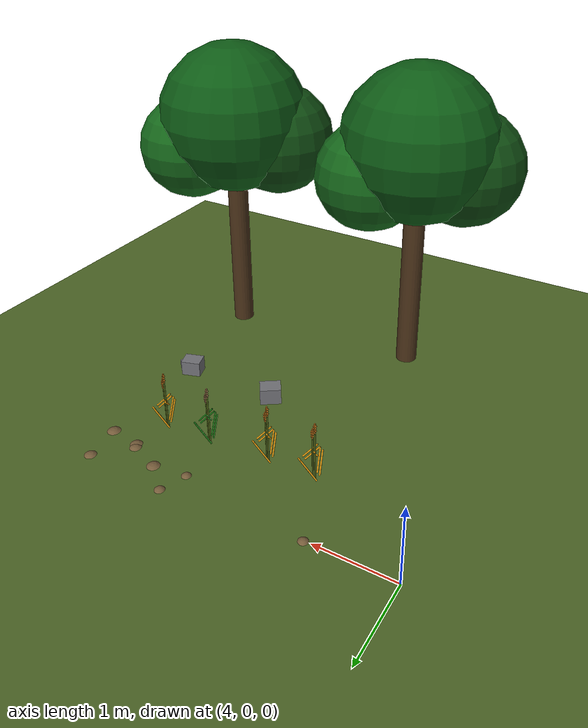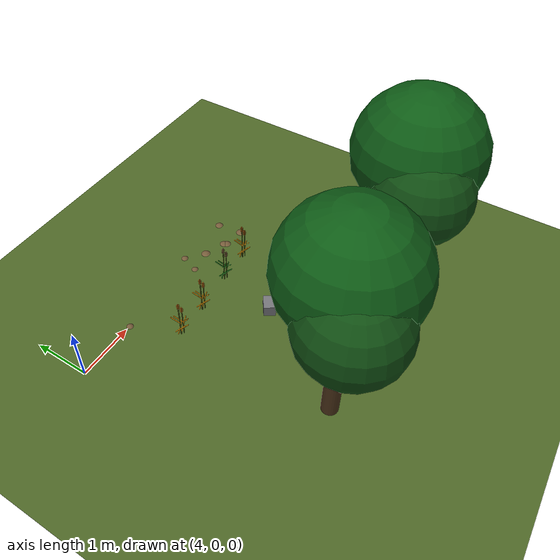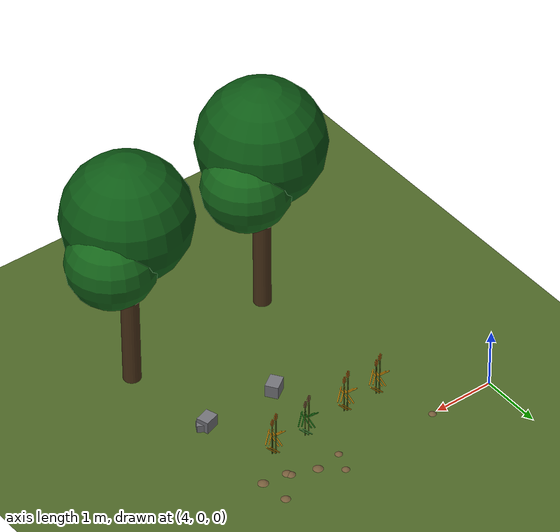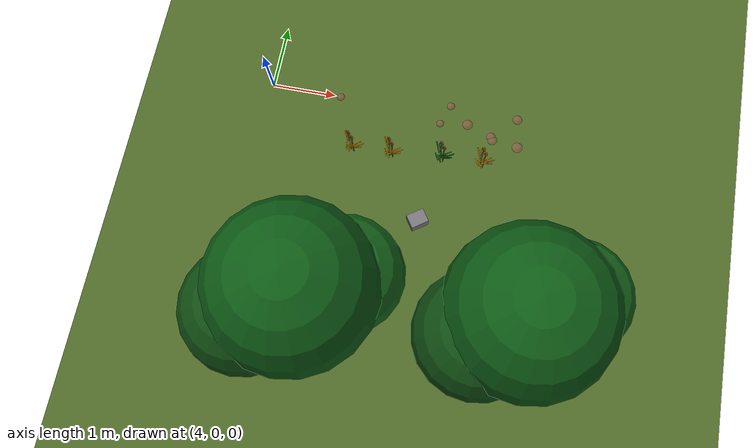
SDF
<sdf version="1.6">
 <world name="default">
  <model name="ground">
   <static>true</static>
   <link name="link">
    <collision name="col"><geometry><plane><normal>0 0 1</normal><size>40 40</size></plane></geometry></collision>
    <visual name="vis">
     <geometry><plane><normal>0 0 1</normal><size>40 40</size></plane></geometry>
     <material><ambient>0.30 0.40 0.15 1</ambient><diffuse>0.30 0.40 0.15 1</diffuse></material>
    </visual>
   </link>
  </model>
  <model name="plant_07">
   <static>true</static>
   <pose>5.43 -0.83 0 0 0 0</pose>
   <link name="link">
    <visual name="stem_0">
     <pose>0.000 0.000 0.320 0.000 0.000 0.000</pose>
     <geometry><cylinder><radius>0.01</radius><length>0.64</length></cylinder></geometry>
     <material><ambient>0.30 0.38 0.08 1</ambient><diffuse>0.30 0.38 0.08 1</diffuse></material>
    </visual>
    <visual name="leaf_0_0">
     <pose>0.055 0.045 0.130 0.000 0.700 0.150</pose>
     <geometry><cylinder><radius>0.009</radius><length>0.3</length></cylinder></geometry>
     <material><ambient>0.86 0.58 0.04 1</ambient><diffuse>0.86 0.58 0.04 1</diffuse></material>
    </visual>
    <visual name="leaf_0_1">
     <pose>-0.055 -0.045 0.230 0.000 -0.720 1.900</pose>
     <geometry><cylinder><radius>0.009</radius><length>0.28</length></cylinder></geometry>
     <material><ambient>0.86 0.58 0.04 1</ambient><diffuse>0.86 0.58 0.04 1</diffuse></material>
    </visual>
    <visual name="leaf_0_2">
     <pose>0.055 -0.045 0.320 0.000 0.780 3.700</pose>
     <geometry><cylinder><radius>0.009</radius><length>0.24</length></cylinder></geometry>
     <material><ambient>0.86 0.58 0.04 1</ambient><diffuse>0.86 0.58 0.04 1</diffuse></material>
    </visual>
    <visual name="leaf_0_3">
     <pose>-0.055 0.045 0.400 0.000 -0.800 5.200</pose>
     <geometry><cylinder><radius>0.009</radius><length>0.2</length></cylinder></geometry>
     <material><ambient>0.86 0.58 0.04 1</ambient><diffuse>0.86 0.58 0.04 1</diffuse></material>
    </visual>
    <visual name="stem_1">
     <pose>0.045 -0.025 0.265 0.000 0.000 0.000</pose>
     <geometry><cylinder><radius>0.008</radius><length>0.53</length></cylinder></geometry>
     <material><ambient>0.30 0.38 0.08 1</ambient><diffuse>0.30 0.38 0.08 1</diffuse></material>
    </visual>
    <visual name="leaf_1_0">
     <pose>0.100 0.020 0.130 0.000 0.700 0.150</pose>
     <geometry><cylinder><radius>0.009</radius><length>0.3</length></cylinder></geometry>
     <material><ambient>0.86 0.58 0.04 1</ambient><diffuse>0.86 0.58 0.04 1</diffuse></material>
    </visual>
    <visual name="leaf_1_1">
     <pose>-0.010 -0.070 0.230 0.000 -0.720 1.900</pose>
     <geometry><cylinder><radius>0.009</radius><length>0.28</length></cylinder></geometry>
     <material><ambient>0.86 0.58 0.04 1</ambient><diffuse>0.86 0.58 0.04 1</diffuse></material>
    </visual>
    <visual name="leaf_1_2">
     <pose>0.100 -0.070 0.320 0.000 0.780 3.700</pose>
     <geometry><cylinder><radius>0.009</radius><length>0.24</length></cylinder></geometry>
     <material><ambient>0.86 0.58 0.04 1</ambient><diffuse>0.86 0.58 0.04 1</diffuse></material>
    </visual>
    <visual name="leaf_1_3">
     <pose>-0.010 0.020 0.400 0.000 -0.800 5.200</pose>
     <geometry><cylinder><radius>0.009</radius><length>0.2</length></cylinder></geometry>
     <material><ambient>0.86 0.58 0.04 1</ambient><diffuse>0.86 0.58 0.04 1</diffuse></material>
    </visual>
    <visual name="ear_axis_0">
     <pose>0.000 0.000 0.715 0.000 0.000 0.000</pose>
     <geometry><cylinder><radius>0.010</radius><length>0.13</length></cylinder></geometry>
     <material><ambient>0.62 0.36 0.06 1</ambient><diffuse>0.62 0.36 0.06 1</diffuse></material>
    </visual>
    <visual name="grain_0_0">
     <pose>0.012 -0.006 0.675 0.000 0.000 0.000</pose>
     <geometry><sphere><radius>0.012</radius></sphere></geometry>
     <material><ambient>0.62 0.36 0.06 1</ambient><diffuse>0.62 0.36 0.06 1</diffuse></material>
    </visual>
    <visual name="grain_0_1">
     <pose>-0.014 0.006 0.691 0.000 0.000 0.000</pose>
     <geometry><sphere><radius>0.012</radius></sphere></geometry>
     <material><ambient>0.62 0.36 0.06 1</ambient><diffuse>0.62 0.36 0.06 1</diffuse></material>
    </visual>
    <visual name="grain_0_2">
     <pose>0.016 -0.006 0.707 0.000 0.000 0.000</pose>
     <geometry><sphere><radius>0.012</radius></sphere></geometry>
     <material><ambient>0.62 0.36 0.06 1</ambient><diffuse>0.62 0.36 0.06 1</diffuse></material>
    </visual>
    <visual name="grain_0_3">
     <pose>-0.012 0.006 0.723 0.000 0.000 0.000</pose>
     <geometry><sphere><radius>0.012</radius></sphere></geometry>
     <material><ambient>0.62 0.36 0.06 1</ambient><diffuse>0.62 0.36 0.06 1</diffuse></material>
    </visual>
    <visual name="grain_0_4">
     <pose>0.014 -0.006 0.739 0.000 0.000 0.000</pose>
     <geometry><sphere><radius>0.012</radius></sphere></geometry>
     <material><ambient>0.62 0.36 0.06 1</ambient><diffuse>0.62 0.36 0.06 1</diffuse></material>
    </visual>
    <visual name="grain_0_5">
     <pose>-0.016 0.006 0.755 0.000 0.000 0.000</pose>
     <geometry><sphere><radius>0.012</radius></sphere></geometry>
     <material><ambient>0.62 0.36 0.06 1</ambient><diffuse>0.62 0.36 0.06 1</diffuse></material>
    </visual>
    <visual name="ear_axis_1">
     <pose>0.045 -0.025 0.605 0.000 0.000 0.000</pose>
     <geometry><cylinder><radius>0.010</radius><length>0.13</length></cylinder></geometry>
     <material><ambient>0.62 0.36 0.06 1</ambient><diffuse>0.62 0.36 0.06 1</diffuse></material>
    </visual>
    <visual name="grain_1_0">
     <pose>0.057 -0.031 0.565 0.000 0.000 0.000</pose>
     <geometry><sphere><radius>0.012</radius></sphere></geometry>
     <material><ambient>0.62 0.36 0.06 1</ambient><diffuse>0.62 0.36 0.06 1</diffuse></material>
    </visual>
    <visual name="grain_1_1">
     <pose>0.031 -0.019 0.581 0.000 0.000 0.000</pose>
     <geometry><sphere><radius>0.012</radius></sphere></geometry>
     <material><ambient>0.62 0.36 0.06 1</ambient><diffuse>0.62 0.36 0.06 1</diffuse></material>
    </visual>
    <visual name="grain_1_2">
     <pose>0.061 -0.031 0.597 0.000 0.000 0.000</pose>
     <geometry><sphere><radius>0.012</radius></sphere></geometry>
     <material><ambient>0.62 0.36 0.06 1</ambient><diffuse>0.62 0.36 0.06 1</diffuse></material>
    </visual>
    <visual name="grain_1_3">
     <pose>0.033 -0.019 0.613 0.000 0.000 0.000</pose>
     <geometry><sphere><radius>0.012</radius></sphere></geometry>
     <material><ambient>0.62 0.36 0.06 1</ambient><diffuse>0.62 0.36 0.06 1</diffuse></material>
    </visual>
    <visual name="grain_1_4">
     <pose>0.059 -0.031 0.629 0.000 0.000 0.000</pose>
     <geometry><sphere><radius>0.012</radius></sphere></geometry>
     <material><ambient>0.62 0.36 0.06 1</ambient><diffuse>0.62 0.36 0.06 1</diffuse></material>
    </visual>
    <visual name="grain_1_5">
     <pose>0.029 -0.019 0.645 0.000 0.000 0.000</pose>
     <geometry><sphere><radius>0.012</radius></sphere></geometry>
     <material><ambient>0.62 0.36 0.06 1</ambient><diffuse>0.62 0.36 0.06 1</diffuse></material>
    </visual>
   </link>
  </model>
  <model name="plant_08">
   <static>true</static>
   <pose>6.04 -0.82 0 0 0 0</pose>
   <link name="link">
    <visual name="stem_0">
     <pose>0.000 0.000 0.320 0.000 0.000 0.000</pose>
     <geometry><cylinder><radius>0.01</radius><length>0.64</length></cylinder></geometry>
     <material><ambient>0.30 0.38 0.08 1</ambient><diffuse>0.30 0.38 0.08 1</diffuse></material>
    </visual>
    <visual name="leaf_0_0">
     <pose>0.055 0.045 0.130 0.000 0.700 0.150</pose>
     <geometry><cylinder><radius>0.009</radius><length>0.3</length></cylinder></geometry>
     <material><ambient>0.86 0.58 0.04 1</ambient><diffuse>0.86 0.58 0.04 1</diffuse></material>
    </visual>
    <visual name="leaf_0_1">
     <pose>-0.055 -0.045 0.230 0.000 -0.720 1.900</pose>
     <geometry><cylinder><radius>0.009</radius><length>0.28</length></cylinder></geometry>
     <material><ambient>0.86 0.58 0.04 1</ambient><diffuse>0.86 0.58 0.04 1</diffuse></material>
    </visual>
    <visual name="leaf_0_2">
     <pose>0.055 -0.045 0.320 0.000 0.780 3.700</pose>
     <geometry><cylinder><radius>0.009</radius><length>0.24</length></cylinder></geometry>
     <material><ambient>0.86 0.58 0.04 1</ambient><diffuse>0.86 0.58 0.04 1</diffuse></material>
    </visual>
    <visual name="leaf_0_3">
     <pose>-0.055 0.045 0.400 0.000 -0.800 5.200</pose>
     <geometry><cylinder><radius>0.009</radius><length>0.2</length></cylinder></geometry>
     <material><ambient>0.86 0.58 0.04 1</ambient><diffuse>0.86 0.58 0.04 1</diffuse></material>
    </visual>
    <visual name="stem_1">
     <pose>0.045 -0.025 0.265 0.000 0.000 0.000</pose>
     <geometry><cylinder><radius>0.008</radius><length>0.53</length></cylinder></geometry>
     <material><ambient>0.30 0.38 0.08 1</ambient><diffuse>0.30 0.38 0.08 1</diffuse></material>
    </visual>
    <visual name="leaf_1_0">
     <pose>0.100 0.020 0.130 0.000 0.700 0.150</pose>
     <geometry><cylinder><radius>0.009</radius><length>0.3</length></cylinder></geometry>
     <material><ambient>0.86 0.58 0.04 1</ambient><diffuse>0.86 0.58 0.04 1</diffuse></material>
    </visual>
    <visual name="leaf_1_1">
     <pose>-0.010 -0.070 0.230 0.000 -0.720 1.900</pose>
     <geometry><cylinder><radius>0.009</radius><length>0.28</length></cylinder></geometry>
     <material><ambient>0.86 0.58 0.04 1</ambient><diffuse>0.86 0.58 0.04 1</diffuse></material>
    </visual>
    <visual name="leaf_1_2">
     <pose>0.100 -0.070 0.320 0.000 0.780 3.700</pose>
     <geometry><cylinder><radius>0.009</radius><length>0.24</length></cylinder></geometry>
     <material><ambient>0.86 0.58 0.04 1</ambient><diffuse>0.86 0.58 0.04 1</diffuse></material>
    </visual>
    <visual name="leaf_1_3">
     <pose>-0.010 0.020 0.400 0.000 -0.800 5.200</pose>
     <geometry><cylinder><radius>0.009</radius><length>0.2</length></cylinder></geometry>
     <material><ambient>0.86 0.58 0.04 1</ambient><diffuse>0.86 0.58 0.04 1</diffuse></material>
    </visual>
    <visual name="ear_axis_0">
     <pose>0.000 0.000 0.715 0.000 0.000 0.000</pose>
     <geometry><cylinder><radius>0.010</radius><length>0.13</length></cylinder></geometry>
     <material><ambient>0.62 0.36 0.06 1</ambient><diffuse>0.62 0.36 0.06 1</diffuse></material>
    </visual>
    <visual name="grain_0_0">
     <pose>0.012 -0.006 0.675 0.000 0.000 0.000</pose>
     <geometry><sphere><radius>0.012</radius></sphere></geometry>
     <material><ambient>0.62 0.36 0.06 1</ambient><diffuse>0.62 0.36 0.06 1</diffuse></material>
    </visual>
    <visual name="grain_0_1">
     <pose>-0.014 0.006 0.691 0.000 0.000 0.000</pose>
     <geometry><sphere><radius>0.012</radius></sphere></geometry>
     <material><ambient>0.62 0.36 0.06 1</ambient><diffuse>0.62 0.36 0.06 1</diffuse></material>
    </visual>
    <visual name="grain_0_2">
     <pose>0.016 -0.006 0.707 0.000 0.000 0.000</pose>
     <geometry><sphere><radius>0.012</radius></sphere></geometry>
     <material><ambient>0.62 0.36 0.06 1</ambient><diffuse>0.62 0.36 0.06 1</diffuse></material>
    </visual>
    <visual name="grain_0_3">
     <pose>-0.012 0.006 0.723 0.000 0.000 0.000</pose>
     <geometry><sphere><radius>0.012</radius></sphere></geometry>
     <material><ambient>0.62 0.36 0.06 1</ambient><diffuse>0.62 0.36 0.06 1</diffuse></material>
    </visual>
    <visual name="grain_0_4">
     <pose>0.014 -0.006 0.739 0.000 0.000 0.000</pose>
     <geometry><sphere><radius>0.012</radius></sphere></geometry>
     <material><ambient>0.62 0.36 0.06 1</ambient><diffuse>0.62 0.36 0.06 1</diffuse></material>
    </visual>
    <visual name="grain_0_5">
     <pose>-0.016 0.006 0.755 0.000 0.000 0.000</pose>
     <geometry><sphere><radius>0.012</radius></sphere></geometry>
     <material><ambient>0.62 0.36 0.06 1</ambient><diffuse>0.62 0.36 0.06 1</diffuse></material>
    </visual>
    <visual name="ear_axis_1">
     <pose>0.045 -0.025 0.605 0.000 0.000 0.000</pose>
     <geometry><cylinder><radius>0.010</radius><length>0.13</length></cylinder></geometry>
     <material><ambient>0.62 0.36 0.06 1</ambient><diffuse>0.62 0.36 0.06 1</diffuse></material>
    </visual>
    <visual name="grain_1_0">
     <pose>0.057 -0.031 0.565 0.000 0.000 0.000</pose>
     <geometry><sphere><radius>0.012</radius></sphere></geometry>
     <material><ambient>0.62 0.36 0.06 1</ambient><diffuse>0.62 0.36 0.06 1</diffuse></material>
    </visual>
    <visual name="grain_1_1">
     <pose>0.031 -0.019 0.581 0.000 0.000 0.000</pose>
     <geometry><sphere><radius>0.012</radius></sphere></geometry>
     <material><ambient>0.62 0.36 0.06 1</ambient><diffuse>0.62 0.36 0.06 1</diffuse></material>
    </visual>
    <visual name="grain_1_2">
     <pose>0.061 -0.031 0.597 0.000 0.000 0.000</pose>
     <geometry><sphere><radius>0.012</radius></sphere></geometry>
     <material><ambient>0.62 0.36 0.06 1</ambient><diffuse>0.62 0.36 0.06 1</diffuse></material>
    </visual>
    <visual name="grain_1_3">
     <pose>0.033 -0.019 0.613 0.000 0.000 0.000</pose>
     <geometry><sphere><radius>0.012</radius></sphere></geometry>
     <material><ambient>0.62 0.36 0.06 1</ambient><diffuse>0.62 0.36 0.06 1</diffuse></material>
    </visual>
    <visual name="grain_1_4">
     <pose>0.059 -0.031 0.629 0.000 0.000 0.000</pose>
     <geometry><sphere><radius>0.012</radius></sphere></geometry>
     <material><ambient>0.62 0.36 0.06 1</ambient><diffuse>0.62 0.36 0.06 1</diffuse></material>
    </visual>
    <visual name="grain_1_5">
     <pose>0.029 -0.019 0.645 0.000 0.000 0.000</pose>
     <geometry><sphere><radius>0.012</radius></sphere></geometry>
     <material><ambient>0.62 0.36 0.06 1</ambient><diffuse>0.62 0.36 0.06 1</diffuse></material>
    </visual>
   </link>
  </model>
  <model name="plant_09">
   <static>true</static>
   <pose>6.82 -0.75 0 0 0 0</pose>
   <link name="link">
    <visual name="stem_0">
     <pose>0.000 0.000 0.320 0.000 0.000 0.000</pose>
     <geometry><cylinder><radius>0.01</radius><length>0.64</length></cylinder></geometry>
     <material><ambient>0.30 0.38 0.08 1</ambient><diffuse>0.30 0.38 0.08 1</diffuse></material>
    </visual>
    <visual name="leaf_0_0">
     <pose>0.055 0.045 0.130 0.000 0.700 0.150</pose>
     <geometry><cylinder><radius>0.009</radius><length>0.3</length></cylinder></geometry>
     <material><ambient>0.08 0.42 0.05 1</ambient><diffuse>0.08 0.42 0.05 1</diffuse></material>
    </visual>
    <visual name="leaf_0_1">
     <pose>-0.055 -0.045 0.230 0.000 -0.720 1.900</pose>
     <geometry><cylinder><radius>0.009</radius><length>0.28</length></cylinder></geometry>
     <material><ambient>0.08 0.42 0.05 1</ambient><diffuse>0.08 0.42 0.05 1</diffuse></material>
    </visual>
    <visual name="leaf_0_2">
     <pose>0.055 -0.045 0.320 0.000 0.780 3.700</pose>
     <geometry><cylinder><radius>0.009</radius><length>0.24</length></cylinder></geometry>
     <material><ambient>0.08 0.42 0.05 1</ambient><diffuse>0.08 0.42 0.05 1</diffuse></material>
    </visual>
    <visual name="leaf_0_3">
     <pose>-0.055 0.045 0.400 0.000 -0.800 5.200</pose>
     <geometry><cylinder><radius>0.009</radius><length>0.2</length></cylinder></geometry>
     <material><ambient>0.08 0.42 0.05 1</ambient><diffuse>0.08 0.42 0.05 1</diffuse></material>
    </visual>
    <visual name="stem_1">
     <pose>0.045 -0.025 0.265 0.000 0.000 0.000</pose>
     <geometry><cylinder><radius>0.008</radius><length>0.53</length></cylinder></geometry>
     <material><ambient>0.30 0.38 0.08 1</ambient><diffuse>0.30 0.38 0.08 1</diffuse></material>
    </visual>
    <visual name="leaf_1_0">
     <pose>0.100 0.020 0.130 0.000 0.700 0.150</pose>
     <geometry><cylinder><radius>0.009</radius><length>0.3</length></cylinder></geometry>
     <material><ambient>0.08 0.42 0.05 1</ambient><diffuse>0.08 0.42 0.05 1</diffuse></material>
    </visual>
    <visual name="leaf_1_1">
     <pose>-0.010 -0.070 0.230 0.000 -0.720 1.900</pose>
     <geometry><cylinder><radius>0.009</radius><length>0.28</length></cylinder></geometry>
     <material><ambient>0.08 0.42 0.05 1</ambient><diffuse>0.08 0.42 0.05 1</diffuse></material>
    </visual>
    <visual name="leaf_1_2">
     <pose>0.100 -0.070 0.320 0.000 0.780 3.700</pose>
     <geometry><cylinder><radius>0.009</radius><length>0.24</length></cylinder></geometry>
     <material><ambient>0.08 0.42 0.05 1</ambient><diffuse>0.08 0.42 0.05 1</diffuse></material>
    </visual>
    <visual name="leaf_1_3">
     <pose>-0.010 0.020 0.400 0.000 -0.800 5.200</pose>
     <geometry><cylinder><radius>0.009</radius><length>0.2</length></cylinder></geometry>
     <material><ambient>0.08 0.42 0.05 1</ambient><diffuse>0.08 0.42 0.05 1</diffuse></material>
    </visual>
    <visual name="ear_axis_0">
     <pose>0.000 0.000 0.715 0.000 0.000 0.000</pose>
     <geometry><cylinder><radius>0.010</radius><length>0.13</length></cylinder></geometry>
     <material><ambient>0.48 0.36 0.22 1</ambient><diffuse>0.48 0.36 0.22 1</diffuse></material>
    </visual>
    <visual name="grain_0_0">
     <pose>0.012 -0.006 0.675 0.000 0.000 0.000</pose>
     <geometry><sphere><radius>0.012</radius></sphere></geometry>
     <material><ambient>0.48 0.36 0.22 1</ambient><diffuse>0.48 0.36 0.22 1</diffuse></material>
    </visual>
    <visual name="grain_0_1">
     <pose>-0.014 0.006 0.691 0.000 0.000 0.000</pose>
     <geometry><sphere><radius>0.012</radius></sphere></geometry>
     <material><ambient>0.48 0.36 0.22 1</ambient><diffuse>0.48 0.36 0.22 1</diffuse></material>
    </visual>
    <visual name="grain_0_2">
     <pose>0.016 -0.006 0.707 0.000 0.000 0.000</pose>
     <geometry><sphere><radius>0.012</radius></sphere></geometry>
     <material><ambient>0.48 0.36 0.22 1</ambient><diffuse>0.48 0.36 0.22 1</diffuse></material>
    </visual>
    <visual name="grain_0_3">
     <pose>-0.012 0.006 0.723 0.000 0.000 0.000</pose>
     <geometry><sphere><radius>0.012</radius></sphere></geometry>
     <material><ambient>0.48 0.36 0.22 1</ambient><diffuse>0.48 0.36 0.22 1</diffuse></material>
    </visual>
    <visual name="grain_0_4">
     <pose>0.014 -0.006 0.739 0.000 0.000 0.000</pose>
     <geometry><sphere><radius>0.012</radius></sphere></geometry>
     <material><ambient>0.48 0.36 0.22 1</ambient><diffuse>0.48 0.36 0.22 1</diffuse></material>
    </visual>
    <visual name="grain_0_5">
     <pose>-0.016 0.006 0.755 0.000 0.000 0.000</pose>
     <geometry><sphere><radius>0.012</radius></sphere></geometry>
     <material><ambient>0.48 0.36 0.22 1</ambient><diffuse>0.48 0.36 0.22 1</diffuse></material>
    </visual>
    <visual name="ear_axis_1">
     <pose>0.045 -0.025 0.605 0.000 0.000 0.000</pose>
     <geometry><cylinder><radius>0.010</radius><length>0.13</length></cylinder></geometry>
     <material><ambient>0.48 0.36 0.22 1</ambient><diffuse>0.48 0.36 0.22 1</diffuse></material>
    </visual>
    <visual name="grain_1_0">
     <pose>0.057 -0.031 0.565 0.000 0.000 0.000</pose>
     <geometry><sphere><radius>0.012</radius></sphere></geometry>
     <material><ambient>0.48 0.36 0.22 1</ambient><diffuse>0.48 0.36 0.22 1</diffuse></material>
    </visual>
    <visual name="grain_1_1">
     <pose>0.031 -0.019 0.581 0.000 0.000 0.000</pose>
     <geometry><sphere><radius>0.012</radius></sphere></geometry>
     <material><ambient>0.48 0.36 0.22 1</ambient><diffuse>0.48 0.36 0.22 1</diffuse></material>
    </visual>
    <visual name="grain_1_2">
     <pose>0.061 -0.031 0.597 0.000 0.000 0.000</pose>
     <geometry><sphere><radius>0.012</radius></sphere></geometry>
     <material><ambient>0.48 0.36 0.22 1</ambient><diffuse>0.48 0.36 0.22 1</diffuse></material>
    </visual>
    <visual name="grain_1_3">
     <pose>0.033 -0.019 0.613 0.000 0.000 0.000</pose>
     <geometry><sphere><radius>0.012</radius></sphere></geometry>
     <material><ambient>0.48 0.36 0.22 1</ambient><diffuse>0.48 0.36 0.22 1</diffuse></material>
    </visual>
    <visual name="grain_1_4">
     <pose>0.059 -0.031 0.629 0.000 0.000 0.000</pose>
     <geometry><sphere><radius>0.012</radius></sphere></geometry>
     <material><ambient>0.48 0.36 0.22 1</ambient><diffuse>0.48 0.36 0.22 1</diffuse></material>
    </visual>
    <visual name="grain_1_5">
     <pose>0.029 -0.019 0.645 0.000 0.000 0.000</pose>
     <geometry><sphere><radius>0.012</radius></sphere></geometry>
     <material><ambient>0.48 0.36 0.22 1</ambient><diffuse>0.48 0.36 0.22 1</diffuse></material>
    </visual>
   </link>
  </model>
  <model name="plant_10">
   <static>true</static>
   <pose>7.44 -0.73 0 0 0 0</pose>
   <link name="link">
    <visual name="stem_0">
     <pose>0.000 0.000 0.320 0.000 0.000 0.000</pose>
     <geometry><cylinder><radius>0.01</radius><length>0.64</length></cylinder></geometry>
     <material><ambient>0.30 0.38 0.08 1</ambient><diffuse>0.30 0.38 0.08 1</diffuse></material>
    </visual>
    <visual name="leaf_0_0">
     <pose>0.055 0.045 0.130 0.000 0.700 0.150</pose>
     <geometry><cylinder><radius>0.009</radius><length>0.3</length></cylinder></geometry>
     <material><ambient>0.86 0.58 0.04 1</ambient><diffuse>0.86 0.58 0.04 1</diffuse></material>
    </visual>
    <visual name="leaf_0_1">
     <pose>-0.055 -0.045 0.230 0.000 -0.720 1.900</pose>
     <geometry><cylinder><radius>0.009</radius><length>0.28</length></cylinder></geometry>
     <material><ambient>0.86 0.58 0.04 1</ambient><diffuse>0.86 0.58 0.04 1</diffuse></material>
    </visual>
    <visual name="leaf_0_2">
     <pose>0.055 -0.045 0.320 0.000 0.780 3.700</pose>
     <geometry><cylinder><radius>0.009</radius><length>0.24</length></cylinder></geometry>
     <material><ambient>0.86 0.58 0.04 1</ambient><diffuse>0.86 0.58 0.04 1</diffuse></material>
    </visual>
    <visual name="leaf_0_3">
     <pose>-0.055 0.045 0.400 0.000 -0.800 5.200</pose>
     <geometry><cylinder><radius>0.009</radius><length>0.2</length></cylinder></geometry>
     <material><ambient>0.86 0.58 0.04 1</ambient><diffuse>0.86 0.58 0.04 1</diffuse></material>
    </visual>
    <visual name="stem_1">
     <pose>0.045 -0.025 0.265 0.000 0.000 0.000</pose>
     <geometry><cylinder><radius>0.008</radius><length>0.53</length></cylinder></geometry>
     <material><ambient>0.30 0.38 0.08 1</ambient><diffuse>0.30 0.38 0.08 1</diffuse></material>
    </visual>
    <visual name="leaf_1_0">
     <pose>0.100 0.020 0.130 0.000 0.700 0.150</pose>
     <geometry><cylinder><radius>0.009</radius><length>0.3</length></cylinder></geometry>
     <material><ambient>0.86 0.58 0.04 1</ambient><diffuse>0.86 0.58 0.04 1</diffuse></material>
    </visual>
    <visual name="leaf_1_1">
     <pose>-0.010 -0.070 0.230 0.000 -0.720 1.900</pose>
     <geometry><cylinder><radius>0.009</radius><length>0.28</length></cylinder></geometry>
     <material><ambient>0.86 0.58 0.04 1</ambient><diffuse>0.86 0.58 0.04 1</diffuse></material>
    </visual>
    <visual name="leaf_1_2">
     <pose>0.100 -0.070 0.320 0.000 0.780 3.700</pose>
     <geometry><cylinder><radius>0.009</radius><length>0.24</length></cylinder></geometry>
     <material><ambient>0.86 0.58 0.04 1</ambient><diffuse>0.86 0.58 0.04 1</diffuse></material>
    </visual>
    <visual name="leaf_1_3">
     <pose>-0.010 0.020 0.400 0.000 -0.800 5.200</pose>
     <geometry><cylinder><radius>0.009</radius><length>0.2</length></cylinder></geometry>
     <material><ambient>0.86 0.58 0.04 1</ambient><diffuse>0.86 0.58 0.04 1</diffuse></material>
    </visual>
    <visual name="ear_axis_0">
     <pose>0.000 0.000 0.715 0.000 0.000 0.000</pose>
     <geometry><cylinder><radius>0.010</radius><length>0.13</length></cylinder></geometry>
     <material><ambient>0.62 0.36 0.06 1</ambient><diffuse>0.62 0.36 0.06 1</diffuse></material>
    </visual>
    <visual name="grain_0_0">
     <pose>0.012 -0.006 0.675 0.000 0.000 0.000</pose>
     <geometry><sphere><radius>0.012</radius></sphere></geometry>
     <material><ambient>0.62 0.36 0.06 1</ambient><diffuse>0.62 0.36 0.06 1</diffuse></material>
    </visual>
    <visual name="grain_0_1">
     <pose>-0.014 0.006 0.691 0.000 0.000 0.000</pose>
     <geometry><sphere><radius>0.012</radius></sphere></geometry>
     <material><ambient>0.62 0.36 0.06 1</ambient><diffuse>0.62 0.36 0.06 1</diffuse></material>
    </visual>
    <visual name="grain_0_2">
     <pose>0.016 -0.006 0.707 0.000 0.000 0.000</pose>
     <geometry><sphere><radius>0.012</radius></sphere></geometry>
     <material><ambient>0.62 0.36 0.06 1</ambient><diffuse>0.62 0.36 0.06 1</diffuse></material>
    </visual>
    <visual name="grain_0_3">
     <pose>-0.012 0.006 0.723 0.000 0.000 0.000</pose>
     <geometry><sphere><radius>0.012</radius></sphere></geometry>
     <material><ambient>0.62 0.36 0.06 1</ambient><diffuse>0.62 0.36 0.06 1</diffuse></material>
    </visual>
    <visual name="grain_0_4">
     <pose>0.014 -0.006 0.739 0.000 0.000 0.000</pose>
     <geometry><sphere><radius>0.012</radius></sphere></geometry>
     <material><ambient>0.62 0.36 0.06 1</ambient><diffuse>0.62 0.36 0.06 1</diffuse></material>
    </visual>
    <visual name="grain_0_5">
     <pose>-0.016 0.006 0.755 0.000 0.000 0.000</pose>
     <geometry><sphere><radius>0.012</radius></sphere></geometry>
     <material><ambient>0.62 0.36 0.06 1</ambient><diffuse>0.62 0.36 0.06 1</diffuse></material>
    </visual>
    <visual name="ear_axis_1">
     <pose>0.045 -0.025 0.605 0.000 0.000 0.000</pose>
     <geometry><cylinder><radius>0.010</radius><length>0.13</length></cylinder></geometry>
     <material><ambient>0.62 0.36 0.06 1</ambient><diffuse>0.62 0.36 0.06 1</diffuse></material>
    </visual>
    <visual name="grain_1_0">
     <pose>0.057 -0.031 0.565 0.000 0.000 0.000</pose>
     <geometry><sphere><radius>0.012</radius></sphere></geometry>
     <material><ambient>0.62 0.36 0.06 1</ambient><diffuse>0.62 0.36 0.06 1</diffuse></material>
    </visual>
    <visual name="grain_1_1">
     <pose>0.031 -0.019 0.581 0.000 0.000 0.000</pose>
     <geometry><sphere><radius>0.012</radius></sphere></geometry>
     <material><ambient>0.62 0.36 0.06 1</ambient><diffuse>0.62 0.36 0.06 1</diffuse></material>
    </visual>
    <visual name="grain_1_2">
     <pose>0.061 -0.031 0.597 0.000 0.000 0.000</pose>
     <geometry><sphere><radius>0.012</radius></sphere></geometry>
     <material><ambient>0.62 0.36 0.06 1</ambient><diffuse>0.62 0.36 0.06 1</diffuse></material>
    </visual>
    <visual name="grain_1_3">
     <pose>0.033 -0.019 0.613 0.000 0.000 0.000</pose>
     <geometry><sphere><radius>0.012</radius></sphere></geometry>
     <material><ambient>0.62 0.36 0.06 1</ambient><diffuse>0.62 0.36 0.06 1</diffuse></material>
    </visual>
    <visual name="grain_1_4">
     <pose>0.059 -0.031 0.629 0.000 0.000 0.000</pose>
     <geometry><sphere><radius>0.012</radius></sphere></geometry>
     <material><ambient>0.62 0.36 0.06 1</ambient><diffuse>0.62 0.36 0.06 1</diffuse></material>
    </visual>
    <visual name="grain_1_5">
     <pose>0.029 -0.019 0.645 0.000 0.000 0.000</pose>
     <geometry><sphere><radius>0.012</radius></sphere></geometry>
     <material><ambient>0.62 0.36 0.06 1</ambient><diffuse>0.62 0.36 0.06 1</diffuse></material>
    </visual>
   </link>
  </model>
  <model name="tree_s3">
   <static>true</static>
   <pose>5.54 -3.55 0 0 0 0</pose>
   <link name="link">
    <collision name="trunk_col">
     <pose>0 0 1.1 0 0 0</pose>
     <geometry><cylinder><radius>0.16</radius><length>2.2</length></cylinder></geometry>
    </collision>
    <visual name="trunk">
     <pose>0 0 1.1 0 0 0</pose>
     <geometry><cylinder><radius>0.14</radius><length>2.2</length></cylinder></geometry>
     <material><ambient>0.30 0.20 0.10 1</ambient><diffuse>0.30 0.20 0.10 1</diffuse></material>
    </visual>
    <visual name="crown1">
     <pose>0 0 3.1 0 0 0</pose>
     <geometry><sphere><radius>1.0</radius></sphere></geometry>
     <material><ambient>0.05 0.35 0.08 1</ambient><diffuse>0.05 0.35 0.08 1</diffuse></material>
    </visual>
    <visual name="crown2">
     <pose>0.5 0.3 2.7 0 0 0</pose>
     <geometry><sphere><radius>0.7</radius></sphere></geometry>
     <material><ambient>0.08 0.40 0.10 1</ambient><diffuse>0.08 0.40 0.10 1</diffuse></material>
    </visual>
    <visual name="crown3">
     <pose>-0.5 -0.3 2.8 0 0 0</pose>
     <geometry><sphere><radius>0.75</radius></sphere></geometry>
     <material><ambient>0.06 0.30 0.07 1</ambient><diffuse>0.06 0.30 0.07 1</diffuse></material>
    </visual>
   </link>
  </model>
  <model name="tree_s4">
   <static>true</static>
   <pose>8.13 -3.35 0 0 0 0</pose>
   <link name="link">
    <collision name="trunk_col">
     <pose>0 0 1.1 0 0 0</pose>
     <geometry><cylinder><radius>0.16</radius><length>2.2</length></cylinder></geometry>
    </collision>
    <visual name="trunk">
     <pose>0 0 1.1 0 0 0</pose>
     <geometry><cylinder><radius>0.14</radius><length>2.2</length></cylinder></geometry>
     <material><ambient>0.30 0.20 0.10 1</ambient><diffuse>0.30 0.20 0.10 1</diffuse></material>
    </visual>
    <visual name="crown1">
     <pose>0 0 3.1 0 0 0</pose>
     <geometry><sphere><radius>1.0</radius></sphere></geometry>
     <material><ambient>0.05 0.35 0.08 1</ambient><diffuse>0.05 0.35 0.08 1</diffuse></material>
    </visual>
    <visual name="crown2">
     <pose>0.5 0.3 2.7 0 0 0</pose>
     <geometry><sphere><radius>0.7</radius></sphere></geometry>
     <material><ambient>0.08 0.40 0.10 1</ambient><diffuse>0.08 0.40 0.10 1</diffuse></material>
    </visual>
    <visual name="crown3">
     <pose>-0.5 -0.3 2.8 0 0 0</pose>
     <geometry><sphere><radius>0.75</radius></sphere></geometry>
     <material><ambient>0.06 0.30 0.07 1</ambient><diffuse>0.06 0.30 0.07 1</diffuse></material>
    </visual>
   </link>
  </model>
  <model name="rock_04">
   <static>true</static>
   <pose>6.65 -1.80 0.107 0 0 0.60</pose>
   <link name="link">
    <collision name="c"><geometry><box><size>0.27 0.21 0.214</size></box></geometry></collision>
    <visual name="v">
     <geometry><box><size>0.27 0.21 0.214</size></box></geometry>
     <material><ambient>0.45 0.45 0.47 1</ambient><diffuse>0.45 0.45 0.47 1</diffuse></material>
    </visual>
   </link>
  </model>
  <model name="rock_06">
   <static>true</static>
   <pose>7.89 -1.80 0.100 0 0 0.31</pose>
   <link name="link">
    <collision name="c"><geometry><box><size>0.25 0.20 0.201</size></box></geometry></collision>
    <visual name="v">
     <geometry><box><size>0.25 0.20 0.201</size></box></geometry>
     <material><ambient>0.45 0.45 0.47 1</ambient><diffuse>0.45 0.45 0.47 1</diffuse></material>
    </visual>
   </link>
  </model>
  <model name="rock_10">
   <static>true</static>
   <pose>7.99 -1.80 0.063 0 0 2.63</pose>
   <link name="link">
    <collision name="c"><geometry><box><size>0.16 0.13 0.126</size></box></geometry></collision>
    <visual name="v">
     <geometry><box><size>0.16 0.13 0.126</size></box></geometry>
     <material><ambient>0.45 0.45 0.47 1</ambient><diffuse>0.45 0.45 0.47 1</diffuse></material>
    </visual>
   </link>
  </model>
  <model name="bump_1_09">
   <static>true</static>
   <pose>5.09 0.00 -0.063 0 0 0</pose>
   <link name="link">
    <collision name="c"><geometry><sphere><radius>0.083</radius></sphere></geometry></collision>
    <visual name="v">
     <geometry><sphere><radius>0.083</radius></sphere></geometry>
     <material><ambient>0.45 0.35 0.22 1</ambient><diffuse>0.45 0.35 0.22 1</diffuse></material>
    </visual>
   </link>
  </model>
  <model name="bump_1_15">
   <static>true</static>
   <pose>7.54 -0.24 -0.091 0 0 0</pose>
   <link name="link">
    <collision name="c"><geometry><sphere><radius>0.111</radius></sphere></geometry></collision>
    <visual name="v">
     <geometry><sphere><radius>0.111</radius></sphere></geometry>
     <material><ambient>0.45 0.35 0.22 1</ambient><diffuse>0.45 0.35 0.22 1</diffuse></material>
    </visual>
   </link>
  </model>
  <model name="bump_1_19">
   <static>true</static>
   <pose>7.97 -0.34 -0.120 0 0 0</pose>
   <link name="link">
    <collision name="c"><geometry><sphere><radius>0.140</radius></sphere></geometry></collision>
    <visual name="v">
     <geometry><sphere><radius>0.140</radius></sphere></geometry>
     <material><ambient>0.45 0.35 0.22 1</ambient><diffuse>0.45 0.35 0.22 1</diffuse></material>
    </visual>
   </link>
  </model>
  <model name="bump_1_21">
   <static>true</static>
   <pose>7.15 -0.10 -0.113 0 0 0</pose>
   <link name="link">
    <collision name="c"><geometry><sphere><radius>0.133</radius></sphere></geometry></collision>
    <visual name="v">
     <geometry><sphere><radius>0.133</radius></sphere></geometry>
     <material><ambient>0.45 0.35 0.22 1</ambient><diffuse>0.45 0.35 0.22 1</diffuse></material>
    </visual>
   </link>
  </model>
  <model name="bump_1_22">
   <static>true</static>
   <pose>6.84 0.16 -0.069 0 0 0</pose>
   <link name="link">
    <collision name="c"><geometry><sphere><radius>0.089</radius></sphere></geometry></collision>
    <visual name="v">
     <geometry><sphere><radius>0.089</radius></sphere></geometry>
     <material><ambient>0.45 0.35 0.22 1</ambient><diffuse>0.45 0.35 0.22 1</diffuse></material>
    </visual>
   </link>
  </model>
  <model name="bump_1_23">
   <static>true</static>
   <pose>7.91 0.12 -0.097 0 0 0</pose>
   <link name="link">
    <collision name="c"><geometry><sphere><radius>0.117</radius></sphere></geometry></collision>
    <visual name="v">
     <geometry><sphere><radius>0.117</radius></sphere></geometry>
     <material><ambient>0.45 0.35 0.22 1</ambient><diffuse>0.45 0.35 0.22 1</diffuse></material>
    </visual>
   </link>
  </model>
  <model name="bump_1_24">
   <static>true</static>
   <pose>6.72 -0.16 -0.060 0 0 0</pose>
   <link name="link">
    <collision name="c"><geometry><sphere><radius>0.080</radius></sphere></geometry></collision>
    <visual name="v">
     <geometry><sphere><radius>0.080</radius></sphere></geometry>
     <material><ambient>0.45 0.35 0.22 1</ambient><diffuse>0.45 0.35 0.22 1</diffuse></material>
    </visual>
   </link>
  </model>
  <model name="bump_1_25">
   <static>true</static>
   <pose>7.57 -0.29 -0.100 0 0 0</pose>
   <link name="link">
    <collision name="c"><geometry><sphere><radius>0.120</radius></sphere></geometry></collision>
    <visual name="v">
     <geometry><sphere><radius>0.120</radius></sphere></geometry>
     <material><ambient>0.45 0.35 0.22 1</ambient><diffuse>0.45 0.35 0.22 1</diffuse></material>
    </visual>
   </link>
  </model>
 </world>
</sdf>
